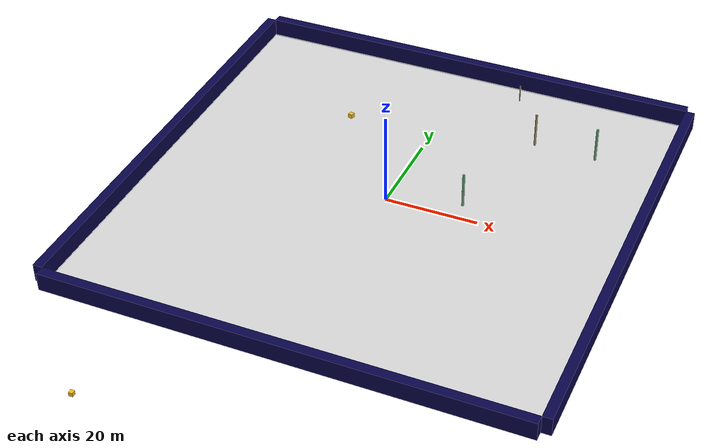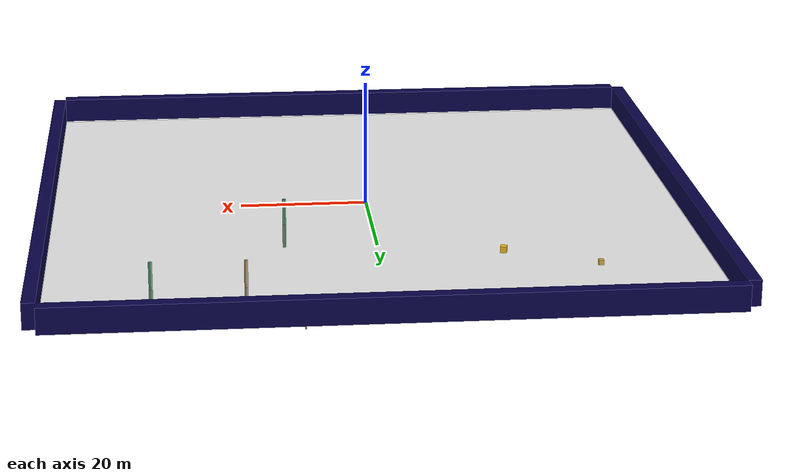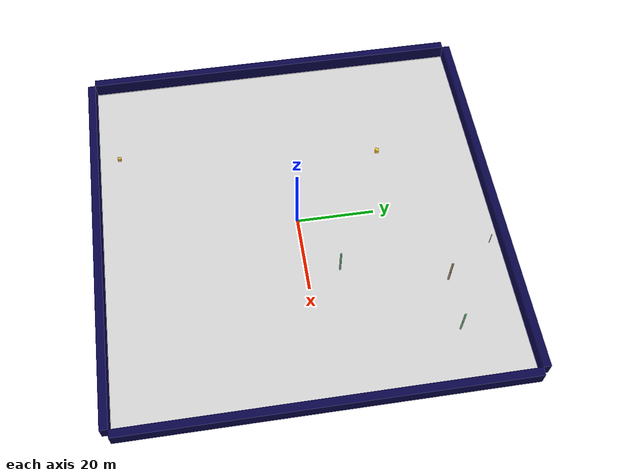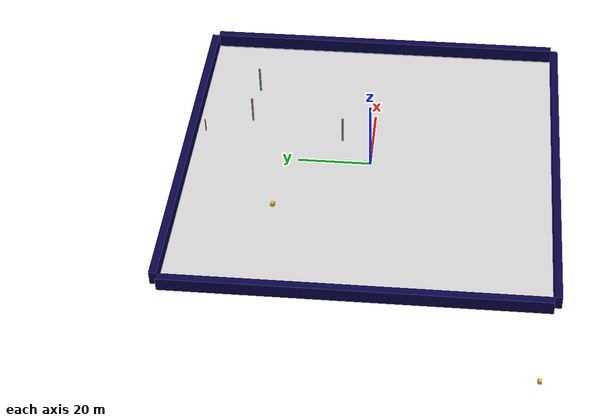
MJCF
<mujoco model="unnamed_model">
  <default>
    <default class="/" />
    <default class="border/" />
    <default class="border_1/" />
    <default class="border_2/" />
    <default class="border_3/" />
    <default class="placeholder/" />
    <default class="agent/" />
    <default class="tree0/" />
    <default class="tree1/" />
    <default class="tree2/" />
    <default class="tree3/" />
  </default>
  <worldbody>
    <body name="border/">
      <body name="border/border" pos="0 51 2">
        <geom name="border/border_geom" class="border/" type="box" size="50.0 1.0 2.0" rgba="0.035 0.016 0.29 1.0" />
      </body>
    </body>
    <body name="border_1/">
      <body name="border_1/border" pos="0 -51 2">
        <geom name="border_1/border_geom" class="border_1/" type="box" size="50.0 1.0 2.0" rgba="0.035 0.016 0.29 1.0" />
      </body>
    </body>
    <body name="border_2/">
      <body name="border_2/border" pos="51 0 2">
        <geom name="border_2/border_geom" class="border_2/" type="box" size="1.0 50.0 2.0" rgba="0.035 0.016 0.29 1.0" />
      </body>
    </body>
    <body name="border_3/">
      <body name="border_3/border" pos="-51 0 2">
        <geom name="border_3/border_geom" class="border_3/" type="box" size="1.0 50.0 2.0" rgba="0.035 0.016 0.29 1.0" />
      </body>
    </body>
    <body name="placeholder/">
      <body name="placeholder/placeholder" pos="-49 -49 -30">
        <geom name="placeholder/box_geom" class="placeholder/" type="box" size="0.5 0.5 0.5" rgba="0.949 0.7451 0.1333 1.0" euler="0 0 0" />
      </body>
    </body>
    <body euler="0 0 -14.594659539137695" name="agent/">
      <joint name="agent/boxagent_freeJoint/" class="/" type="free" />
      <body name="agent/agent" pos="-24.474499999999999 19.179299999999998 0.5" euler="0 0 0">
        <geom name="agent/boxagent_geom" class="agent/" type="box" size="0.5 0.5 0.5" rgba="0.949 0.7451 0.1333 1.0" euler="0 0 0" />
        <camera name="agent/boxagent_camera" class="agent/" pos="1 0 0.5" euler="90 0 0" />
      </body>
    </body>
    <body name="tree0/">
      <body name="tree0/tree0" pos="12.576649999999999 48.246900000000011 0.10000000000000001" euler="0 0 -24.979018200278063">
        <geom name="tree0/tree_geom" class="tree0/" type="box" size="0.1 0.1 2.0" rgba="0.6980392156862745 0.6 0.43137254901960786 1.0" />
      </body>
    </body>
    <body name="tree1/">
      <body name="tree1/tree1" pos="13.599500000000001 9.0302000000000078 0.10000000000000001" euler="0 0 -29.784659413117907">
        <geom name="tree1/tree_geom" class="tree1/" type="box" size="0.2 0.2 4.0" rgba="0.396078431372549 0.6705882352941176 0.48627450980392156 1.0" />
      </body>
    </body>
    <body name="tree2/">
      <body name="tree2/tree2" pos="20.49485 35.819099999999992 0.10000000000000001" euler="0 0 -58.065545447716531">
        <geom name="tree2/tree_geom" class="tree2/" type="box" size="0.2 0.2 4.0" rgba="0.6980392156862745 0.6 0.43137254901960786 1.0" />
      </body>
    </body>
    <body name="tree3/">
      <body name="tree3/tree3" pos="34.344700000000003 35.537300000000002 0.10000000000000001" euler="0 0 -43.706468524729729">
        <geom name="tree3/tree_geom" class="tree3/" type="box" size="0.2 0.2 4.0" rgba="0.396078431372549 0.6705882352941176 0.48627450980392156 1.0" />
      </body>
    </body>
    <geom name="base_plane" class="/" type="plane" size="50 50 0.10000000000000001" />
  </worldbody>
</mujoco>
